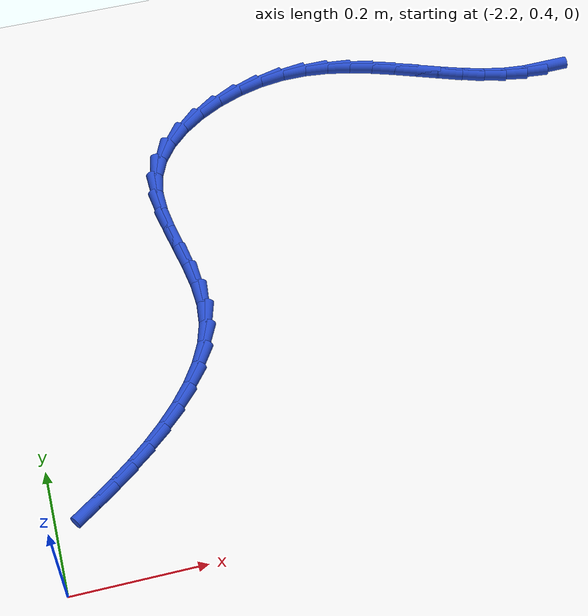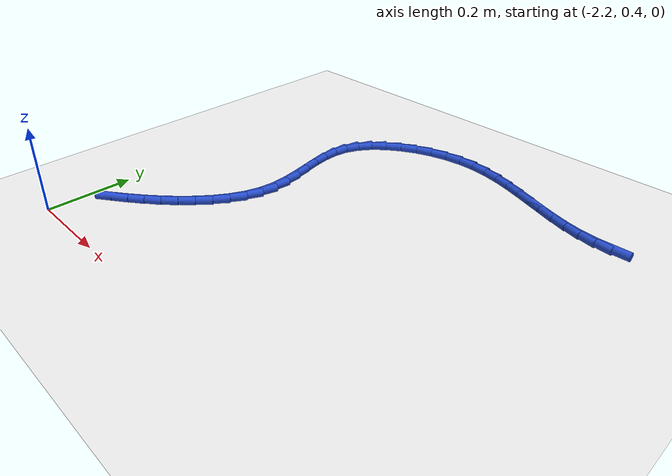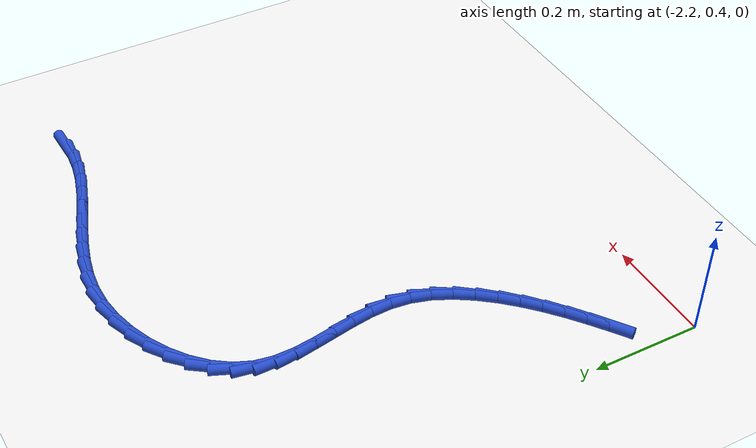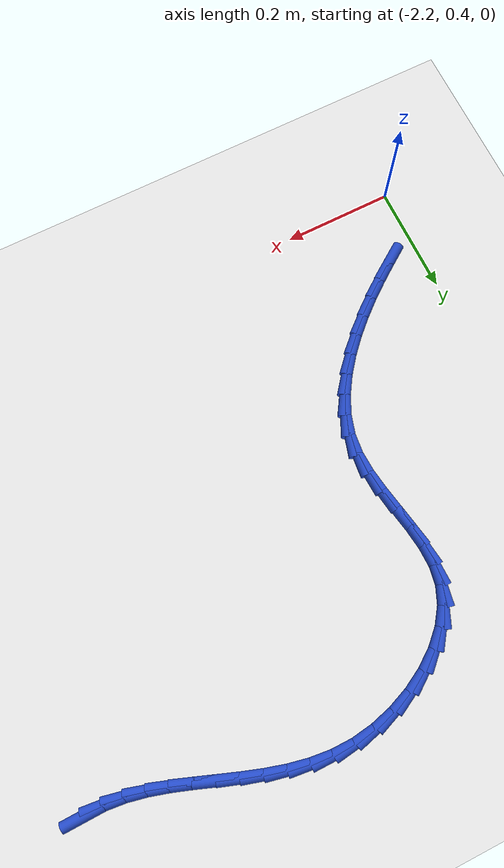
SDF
<sdf version="1.6">
 <world name="default">
  <model name="ground_plane">
   <static>1</static>
   <link name="link">
    <collision name="collision">
     <geometry><plane><normal>0 0 1</normal><size>100 100</size></plane></geometry>
     <surface><friction><ode><mu>100</mu><mu2>50</mu2></ode></friction></surface>
    </collision>
    <visual name="visual">
     <cast_shadows>0</cast_shadows>
     <geometry><plane><normal>0 0 1</normal><size>100 100</size></plane></geometry>
     <material>
      <script><uri>file://media/materials/scripts/gazebo.material</uri><name>Gazebo/WhiteGlow</name></script>
     </material>
    </visual>
   </link>
  </model>
  <model name="line">
   <link name="link_54">
    <pose>-1.254793033872802 1.151147095847294 0.01 0 1.57 0.020079067519532236</pose>
    <collision name="collision">
     <geometry><cylinder><radius>0.01</radius><length>0.08</length></cylinder></geometry>
    </collision>
    <visual name="visual">
     <material>
      <script><name>Gazebo/Blue</name><uri>file://media/materials/scripts/gazebo.material</uri></script>
     </material>
     <geometry><cylinder><radius>0.01</radius><length>0.08</length></cylinder></geometry>
    </visual>
   </link>
   <link name="link_55">
    <pose>-1.290022089403081 1.1504396341845708 0.01 0 1.57 -0.10632945192606161</pose>
    <collision name="collision">
     <geometry><cylinder><radius>0.01</radius><length>0.08</length></cylinder></geometry>
    </collision>
    <visual name="visual">
     <material>
      <script><name>Gazebo/Blue</name><uri>file://media/materials/scripts/gazebo.material</uri></script>
     </material>
     <geometry><cylinder><radius>0.01</radius><length>0.08</length></cylinder></geometry>
    </visual>
   </link>
   <link name="link_56">
    <pose>-1.325047087588335 1.154177921976757 0.01 0 1.57 -0.21056906209801196</pose>
    <collision name="collision">
     <geometry><cylinder><radius>0.01</radius><length>0.08</length></cylinder></geometry>
    </collision>
    <visual name="visual">
     <material>
      <script><name>Gazebo/Blue</name><uri>file://media/materials/scripts/gazebo.material</uri></script>
     </material>
     <geometry><cylinder><radius>0.01</radius><length>0.08</length></cylinder></geometry>
    </visual>
   </link>
   <link name="link_57">
    <pose>-1.36000192263279 1.161649078621337 0.01 0 1.57 -0.2859449568787356</pose>
    <collision name="collision">
     <geometry><cylinder><radius>0.01</radius><length>0.08</length></cylinder></geometry>
    </collision>
    <visual name="visual">
     <material>
      <script><name>Gazebo/Blue</name><uri>file://media/materials/scripts/gazebo.material</uri></script>
     </material>
     <geometry><cylinder><radius>0.01</radius><length>0.08</length></cylinder></geometry>
    </visual>
   </link>
   <link name="link_58">
    <pose>-1.3949951935207343 1.1719371686515603 0.01 0 1.57 -0.3338829245666316</pose>
    <collision name="collision">
     <geometry><cylinder><radius>0.01</radius><length>0.08</length></cylinder></geometry>
    </collision>
    <visual name="visual">
     <material>
      <script><name>Gazebo/Blue</name><uri>file://media/materials/scripts/gazebo.material</uri></script>
     </material>
     <geometry><cylinder><radius>0.01</radius><length>0.08</length></cylinder></geometry>
    </visual>
   </link>
   <link name="link_59">
    <pose>-1.4301354992364586 1.1841262566006776 0.01 0 1.57 -0.3563082021203419</pose>
    <collision name="collision">
     <geometry><cylinder><radius>0.01</radius><length>0.08</length></cylinder></geometry>
    </collision>
    <visual name="visual">
     <material>
      <script><name>Gazebo/Blue</name><uri>file://media/materials/scripts/gazebo.material</uri></script>
     </material>
     <geometry><cylinder><radius>0.01</radius><length>0.08</length></cylinder></geometry>
    </visual>
   </link>
   <link name="link_60">
    <pose>-1.4655314387642513 1.197300407001937 0.01 0 1.57 -0.3546753832581788</pose>
    <collision name="collision">
     <geometry><cylinder><radius>0.01</radius><length>0.08</length></cylinder></geometry>
    </collision>
    <visual name="visual">
     <material>
      <script><name>Gazebo/Blue</name><uri>file://media/materials/scripts/gazebo.material</uri></script>
     </material>
     <geometry><cylinder><radius>0.01</radius><length>0.08</length></cylinder></geometry>
    </visual>
   </link>
   <link name="link_61">
    <pose>-1.5012916110884034 1.2105436843885897 0.01 0 1.57 -0.32964831173904147</pose>
    <collision name="collision">
     <geometry><cylinder><radius>0.01</radius><length>0.08</length></cylinder></geometry>
    </collision>
    <visual name="visual">
     <material>
      <script><name>Gazebo/Blue</name><uri>file://media/materials/scripts/gazebo.material</uri></script>
     </material>
     <geometry><cylinder><radius>0.01</radius><length>0.08</length></cylinder></geometry>
    </visual>
   </link>
   <link name="link_62">
    <pose>-1.537524615193203 1.2229401532938844 0.01 0 1.57 -0.28119318542623895</pose>
    <collision name="collision">
     <geometry><cylinder><radius>0.01</radius><length>0.08</length></cylinder></geometry>
    </collision>
    <visual name="visual">
     <material>
      <script><name>Gazebo/Blue</name><uri>file://media/materials/scripts/gazebo.material</uri></script>
     </material>
     <geometry><cylinder><radius>0.01</radius><length>0.08</length></cylinder></geometry>
    </visual>
   </link>
   <link name="link_63">
    <pose>-1.5743390500629404 1.2335738782510712 0.01 0 1.57 -0.20901153859722285</pose>
    <collision name="collision">
     <geometry><cylinder><radius>0.01</radius><length>0.08</length></cylinder></geometry>
    </collision>
    <visual name="visual">
     <material>
      <script><name>Gazebo/Blue</name><uri>file://media/materials/scripts/gazebo.material</uri></script>
     </material>
     <geometry><cylinder><radius>0.01</radius><length>0.08</length></cylinder></geometry>
    </visual>
   </link>
   <link name="link_64">
    <pose>-1.6118435146819046 1.2415289237933995 0.01 0 1.57 -0.11335218515583197</pose>
    <collision name="collision">
     <geometry><cylinder><radius>0.01</radius><length>0.08</length></cylinder></geometry>
    </collision>
    <visual name="visual">
     <material>
      <script><name>Gazebo/Blue</name><uri>file://media/materials/scripts/gazebo.material</uri></script>
     </material>
     <geometry><cylinder><radius>0.01</radius><length>0.08</length></cylinder></geometry>
    </visual>
   </link>
   <link name="link_65">
    <pose>-1.6501466080343854 1.245889354454119 0.01 0 1.57 0.0038285571263841764</pose>
    <collision name="collision">
     <geometry><cylinder><radius>0.01</radius><length>0.08</length></cylinder></geometry>
    </collision>
    <visual name="visual">
     <material>
      <script><name>Gazebo/Blue</name><uri>file://media/materials/scripts/gazebo.material</uri></script>
     </material>
     <geometry><cylinder><radius>0.01</radius><length>0.08</length></cylinder></geometry>
    </visual>
   </link>
   <link name="link_66">
    <pose>-1.689356929104673 1.2457392347664795 0.01 0 1.57 0.1337514484782975</pose>
    <collision name="collision">
     <geometry><cylinder><radius>0.01</radius><length>0.08</length></cylinder></geometry>
    </collision>
    <visual name="visual">
     <material>
      <script><name>Gazebo/Blue</name><uri>file://media/materials/scripts/gazebo.material</uri></script>
     </material>
     <geometry><cylinder><radius>0.01</radius><length>0.08</length></cylinder></geometry>
    </visual>
   </link>
   <link name="link_67">
    <pose>-1.7293963523306966 1.2403517390886074 0.01 0 1.57 0.25645817553809747</pose>
    <collision name="collision">
     <geometry><cylinder><radius>0.01</radius><length>0.08</length></cylinder></geometry>
    </collision>
    <visual name="visual">
     <material>
      <script><name>Gazebo/Blue</name><uri>file://media/materials/scripts/gazebo.material</uri></script>
     </material>
     <geometry><cylinder><radius>0.01</radius><length>0.08</length></cylinder></geometry>
    </visual>
   </link>
   <link name="link_68">
    <pose>-1.7693138843526466 1.2298840598661762 0.01 0 1.57 0.37371139468720943</pose>
    <collision name="collision">
     <geometry><cylinder><radius>0.01</radius><length>0.08</length></cylinder></geometry>
    </collision>
    <visual name="visual">
     <material>
      <script><name>Gazebo/Blue</name><uri>file://media/materials/scripts/gazebo.material</uri></script>
     </material>
     <geometry><cylinder><radius>0.01</radius><length>0.08</length></cylinder></geometry>
    </visual>
   </link>
   <link name="link_69">
    <pose>-1.8079036855508113 1.2147514912916275 0.01 0 1.57 0.4932370815236531</pose>
    <collision name="collision">
     <geometry><cylinder><radius>0.01</radius><length>0.08</length></cylinder></geometry>
    </collision>
    <visual name="visual">
     <material>
      <script><name>Gazebo/Blue</name><uri>file://media/materials/scripts/gazebo.material</uri></script>
     </material>
     <geometry><cylinder><radius>0.01</radius><length>0.08</length></cylinder></geometry>
    </visual>
   </link>
   <link name="link_70">
    <pose>-1.8439598857299757 1.1953693585234921 0.01 0 1.57 0.6229692006363593</pose>
    <collision name="collision">
     <geometry><cylinder><radius>0.01</radius><length>0.08</length></cylinder></geometry>
    </collision>
    <visual name="visual">
     <material>
      <script><name>Gazebo/Blue</name><uri>file://media/materials/scripts/gazebo.material</uri></script>
     </material>
     <geometry><cylinder><radius>0.01</radius><length>0.08</length></cylinder></geometry>
    </visual>
   </link>
   <link name="link_71">
    <pose>-1.876276614694923 1.1721529867203007 0.01 0 1.57 0.7717691754533109</pose>
    <collision name="collision">
     <geometry><cylinder><radius>0.01</radius><length>0.08</length></cylinder></geometry>
    </collision>
    <visual name="visual">
     <material>
      <script><name>Gazebo/Blue</name><uri>file://media/materials/scripts/gazebo.material</uri></script>
     </material>
     <geometry><cylinder><radius>0.01</radius><length>0.08</length></cylinder></geometry>
    </visual>
   </link>
   <link name="link_72">
    <pose>-1.9036480022504367 1.145517701040583 0.01 0 1.57 0.9494406884156539</pose>
    <collision name="collision">
     <geometry><cylinder><radius>0.01</radius><length>0.08</length></cylinder></geometry>
    </collision>
    <visual name="visual">
     <material>
      <script><name>Gazebo/Blue</name><uri>file://media/materials/scripts/gazebo.material</uri></script>
     </material>
     <geometry><cylinder><radius>0.01</radius><length>0.08</length></cylinder></geometry>
    </visual>
   </link>
   <link name="link_73">
    <pose>-1.9248681782012989 1.1158788266428696 0.01 0 1.57 1.164551867958591</pose>
    <collision name="collision">
     <geometry><cylinder><radius>0.01</radius><length>0.08</length></cylinder></geometry>
    </collision>
    <visual name="visual">
     <material>
      <script><name>Gazebo/Blue</name><uri>file://media/materials/scripts/gazebo.material</uri></script>
     </material>
     <geometry><cylinder><radius>0.01</radius><length>0.08</length></cylinder></geometry>
    </visual>
   </link>
   <link name="link_74">
    <pose>-1.9387314374346918 1.0836516907336773 0.01 0 1.57 1.399395387286337</pose>
    <collision name="collision">
     <geometry><cylinder><radius>0.01</radius><length>0.08</length></cylinder></geometry>
    </collision>
    <visual name="visual">
     <material>
      <script><name>Gazebo/Blue</name><uri>file://media/materials/scripts/gazebo.material</uri></script>
     </material>
     <geometry><cylinder><radius>0.01</radius><length>0.08</length></cylinder></geometry>
    </visual>
   </link>
   <link name="link_75">
    <pose>-1.9446846671885902 1.0492597164812072 0.01 0 1.57 -1.560382782785841</pose>
    <collision name="collision">
     <geometry><cylinder><radius>0.01</radius><length>0.08</length></cylinder></geometry>
    </collision>
    <visual name="visual">
     <material>
      <script><name>Gazebo/Blue</name><uri>file://media/materials/scripts/gazebo.material</uri></script>
     </material>
     <geometry><cylinder><radius>0.01</radius><length>0.08</length></cylinder></geometry>
    </visual>
   </link>
   <link name="link_76">
    <pose>-1.944308652631394 1.0131527998675955 0.01 0 1.57 -1.4459620362663779</pose>
    <collision name="collision">
     <geometry><cylinder><radius>0.01</radius><length>0.08</length></cylinder></geometry>
    </collision>
    <visual name="visual">
     <material>
      <script><name>Gazebo/Blue</name><uri>file://media/materials/scripts/gazebo.material</uri></script>
     </material>
     <geometry><cylinder><radius>0.01</radius><length>0.08</length></cylinder></geometry>
    </visual>
   </link>
   <link name="link_77">
    <pose>-1.9396196419715805 0.9757862391633804 0.01 0 1.57 -1.3897868304589496</pose>
    <collision name="collision">
     <geometry><cylinder><radius>0.01</radius><length>0.08</length></cylinder></geometry>
    </collision>
    <visual name="visual">
     <material>
      <script><name>Gazebo/Blue</name><uri>file://media/materials/scripts/gazebo.material</uri></script>
     </material>
     <geometry><cylinder><radius>0.01</radius><length>0.08</length></cylinder></geometry>
    </visual>
   </link>
   <link name="link_78">
    <pose>-1.932633883417627 0.9376153326390972 0.01 0 1.57 -1.3843509790020614</pose>
    <collision name="collision">
     <geometry><cylinder><radius>0.01</radius><length>0.08</length></cylinder></geometry>
    </collision>
    <visual name="visual">
     <material>
      <script><name>Gazebo/Blue</name><uri>file://media/materials/scripts/gazebo.material</uri></script>
     </material>
     <geometry><cylinder><radius>0.01</radius><length>0.08</length></cylinder></geometry>
    </visual>
   </link>
   <link name="link_79">
    <pose>-1.9253676251780116 0.8990953785652844 0.01 0 1.57 -1.4278065766294634</pose>
    <collision name="collision">
     <geometry><cylinder><radius>0.01</radius><length>0.08</length></cylinder></geometry>
    </collision>
    <visual name="visual">
     <material>
      <script><name>Gazebo/Blue</name><uri>file://media/materials/scripts/gazebo.material</uri></script>
     </material>
     <geometry><cylinder><radius>0.01</radius><length>0.08</length></cylinder></geometry>
    </visual>
   </link>
   <link name="link_80">
    <pose>-1.9198371154612133 0.8606816752124782 0.01 0 1.57 -1.5238450776436405</pose>
    <collision name="collision">
     <geometry><cylinder><radius>0.01</radius><length>0.08</length></cylinder></geometry>
    </collision>
    <visual name="visual">
     <material>
      <script><name>Gazebo/Blue</name><uri>file://media/materials/scripts/gazebo.material</uri></script>
     </material>
     <geometry><cylinder><radius>0.01</radius><length>0.08</length></cylinder></geometry>
    </visual>
   </link>
   <link name="link_81">
    <pose>-1.9180586024757091 0.8228295208512165 0.01 0 1.57 1.4635326749355055</pose>
    <collision name="collision">
     <geometry><cylinder><radius>0.01</radius><length>0.08</length></cylinder></geometry>
    </collision>
    <visual name="visual">
     <material>
      <script><name>Gazebo/Blue</name><uri>file://media/materials/scripts/gazebo.material</uri></script>
     </material>
     <geometry><cylinder><radius>0.01</radius><length>0.08</length></cylinder></geometry>
    </visual>
   </link>
   <link name="link_82">
    <pose>-1.922025145699214 0.785992072830588 0.01 0 1.57 1.2830613508799453</pose>
    <collision name="collision">
     <geometry><cylinder><radius>0.01</radius><length>0.08</length></cylinder></geometry>
    </collision>
    <visual name="visual">
     <material>
      <script><name>Gazebo/Blue</name><uri>file://media/materials/scripts/gazebo.material</uri></script>
     </material>
     <geometry><cylinder><radius>0.01</radius><length>0.08</length></cylinder></geometry>
    </visual>
   </link>
   <link name="link_83">
    <pose>-1.932525597017062 0.7505113088974588 0.01 0 1.57 1.1289585802923472</pose>
    <collision name="collision">
     <geometry><cylinder><radius>0.01</radius><length>0.08</length></cylinder></geometry>
    </collision>
    <visual name="visual">
     <material>
      <script><name>Gazebo/Blue</name><uri>file://media/materials/scripts/gazebo.material</uri></script>
     </material>
     <geometry><cylinder><radius>0.01</radius><length>0.08</length></cylinder></geometry>
    </visual>
   </link>
   <link name="link_84">
    <pose>-1.9485825965247718 0.7165661396286547 0.01 0 1.57 1.0045814075578858</pose>
    <collision name="collision">
     <geometry><cylinder><radius>0.01</radius><length>0.08</length></cylinder></geometry>
    </collision>
    <visual name="visual">
     <material>
      <script><name>Gazebo/Blue</name><uri>file://media/materials/scripts/gazebo.material</uri></script>
     </material>
     <geometry><cylinder><radius>0.01</radius><length>0.08</length></cylinder></geometry>
    </visual>
   </link>
   <link name="link_85">
    <pose>-1.969077999960554 0.6843224775523707 0.01 0 1.57 0.9058738598992899</pose>
    <collision name="collision">
     <geometry><cylinder><radius>0.01</radius><length>0.08</length></cylinder></geometry>
    </collision>
    <visual name="visual">
     <material>
      <script><name>Gazebo/Blue</name><uri>file://media/materials/scripts/gazebo.material</uri></script>
     </material>
     <geometry><cylinder><radius>0.01</radius><length>0.08</length></cylinder></geometry>
    </visual>
   </link>
   <link name="link_86">
    <pose>-1.9928936630626204 0.6539462351968047 0.01 0 1.57 0.827272773821914</pose>
    <collision name="collision">
     <geometry><cylinder><radius>0.01</radius><length>0.08</length></cylinder></geometry>
    </collision>
    <visual name="visual">
     <material>
      <script><name>Gazebo/Blue</name><uri>file://media/materials/scripts/gazebo.material</uri></script>
     </material>
     <geometry><cylinder><radius>0.01</radius><length>0.08</length></cylinder></geometry>
    </visual>
   </link>
   <link name="link_87">
    <pose>-2.019005180237716 0.6255509310988406 0.01 0 1.57 0.7613558030361234</pose>
    <collision name="collision">
     <geometry><cylinder><radius>0.01</radius><length>0.08</length></cylinder></geometry>
    </collision>
    <visual name="visual">
     <material>
      <script><name>Gazebo/Blue</name><uri>file://media/materials/scripts/gazebo.material</uri></script>
     </material>
     <geometry><cylinder><radius>0.01</radius><length>0.08</length></cylinder></geometry>
    </visual>
   </link>
   <link name="link_88">
    <pose>-2.0469055608297393 0.5989608815467561 0.01 0 1.57 0.7065446713461089</pose>
    <collision name="collision">
     <geometry><cylinder><radius>0.01</radius><length>0.08</length></cylinder></geometry>
    </collision>
    <visual name="visual">
     <material>
      <script><name>Gazebo/Blue</name><uri>file://media/materials/scripts/gazebo.material</uri></script>
     </material>
     <geometry><cylinder><radius>0.01</radius><length>0.08</length></cylinder></geometry>
    </visual>
   </link>
   <link name="link_89">
    <pose>-2.0762653643165483 0.5739011635253308 0.01 0 1.57 0.6628796666130935</pose>
    <collision name="collision">
     <geometry><cylinder><radius>0.01</radius><length>0.08</length></cylinder></geometry>
    </collision>
    <visual name="visual">
     <material>
      <script><name>Gazebo/Blue</name><uri>file://media/materials/scripts/gazebo.material</uri></script>
     </material>
     <geometry><cylinder><radius>0.01</radius><length>0.08</length></cylinder></geometry>
    </visual>
   </link>
   <link name="link_90">
    <pose>-2.1067553096553935 0.5500967648804461 0.01 0 1.57 0.6301982753225641</pose>
    <collision name="collision">
     <geometry><cylinder><radius>0.01</radius><length>0.08</length></cylinder></geometry>
    </collision>
    <visual name="visual">
     <material>
      <script><name>Gazebo/Blue</name><uri>file://media/materials/scripts/gazebo.material</uri></script>
     </material>
     <geometry><cylinder><radius>0.01</radius><length>0.08</length></cylinder></geometry>
    </visual>
   </link>
   <link name="link_91">
    <pose>-2.1380461158035238 0.5272726734579808 0.01 0 1.57 0.6082945486078555</pose>
    <collision name="collision">
     <geometry><cylinder><radius>0.01</radius><length>0.08</length></cylinder></geometry>
    </collision>
    <visual name="visual">
     <material>
      <script><name>Gazebo/Blue</name><uri>file://media/materials/scripts/gazebo.material</uri></script>
     </material>
     <geometry><cylinder><radius>0.01</radius><length>0.08</length></cylinder></geometry>
    </visual>
   </link>
  </model>
 </world>
</sdf>
